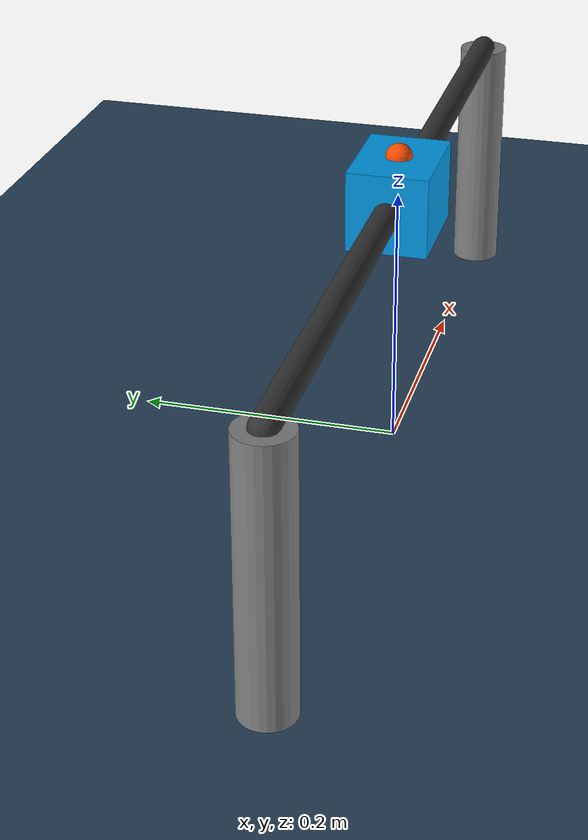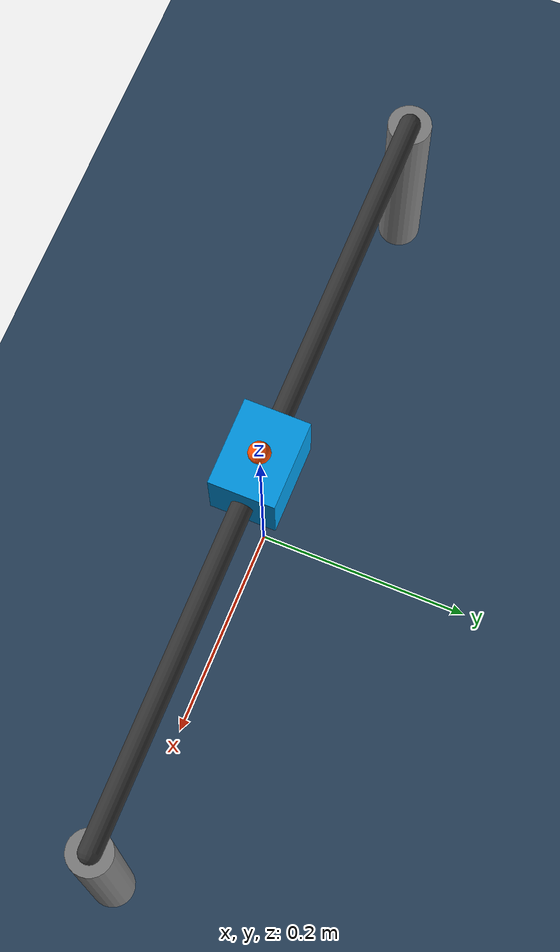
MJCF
<mujoco model="prismatic_joint_position">
  <statistic center="0 0 0.1" extent="0.6" meansize=".05"/>

  <visual>
    <headlight diffuse="0.6 0.6 0.6" ambient="0.3 0.3 0.3" specular="0 0 0"/>
    <rgba haze="0.15 0.25 0.35 1"/>
    <global azimuth="-20" elevation="-20" ellipsoidinertia="true"/>
  </visual>

  <asset>
    <texture type="skybox" builtin="gradient" rgb1="0.3 0.5 0.7" rgb2="0 0 0" width="512" height="3072"/>
    <texture type="2d" name="groundplane" builtin="checker" mark="edge" rgb1="0.2 0.3 0.4" rgb2="0.1 0.2 0.3"
      markrgb="0.8 0.8 0.8" width="300" height="300"/>
    <material name="groundplane" texture="groundplane" texuniform="true" texrepeat="5 5" reflectance="0.2"/>
  </asset>

  <option gravity="0 0 -9.81" timestep="0.002"/>

  <default>
    <joint damping="1"/>
    <geom contype="0" conaffinity="0"/>
  </default>

  <worldbody>
    <light pos="0 0 1.5" dir="0 0 -1" directional="true"/>
    <geom name="floor" size="0 0 0.05" type="plane" material="groundplane"/>

    <geom name="post_left" type="cylinder" pos="-0.35 0 0.1" size="0.02 0.1" rgba="0.5 0.5 0.5 1"/>
    <geom name="post_right" type="cylinder" pos="0.35 0 0.1" size="0.02 0.1" rgba="0.5 0.5 0.5 1"/>
    <geom name="rail" type="capsule" fromto="-0.35 0 0.2 0.35 0 0.2" size="0.01" rgba="0.2 0.2 0.2 1"/>

    <body name="carriage" pos="0 0 0.2">
      <joint name="slider" type="slide" axis="1 0 0" pos="0 0 0" range="-0.3 0.3"/>
      <geom name="block" type="box" size="0.04 0.03 0.03" rgba="0 0.6 0.9 1" mass="0.5"/>
      <site name="marker" pos="0 0 0.03" size="0.01" rgba="1 0.3 0 1"/>
    </body>
  </worldbody>

  <sensor>
    <jointpos name="slider_pos" joint="slider"/>
    <jointvel name="slider_vel" joint="slider"/>
    <framepos name="marker_pos" objtype="site" objname="marker"/>
  </sensor>

  <actuator>
    <position name="position_servo" joint="slider" kp="50" kv="5" ctrlrange="-0.3 0.3"/>
  </actuator>
</mujoco>
